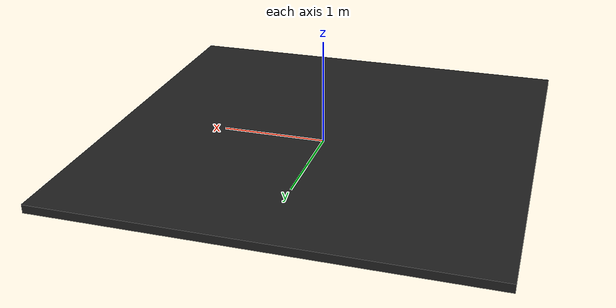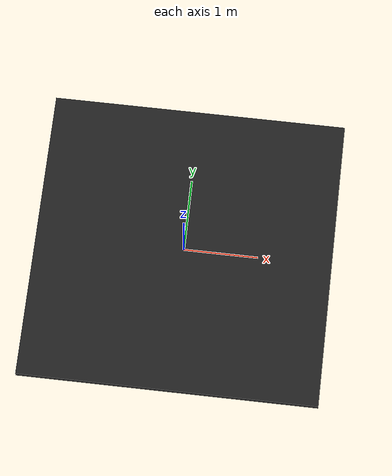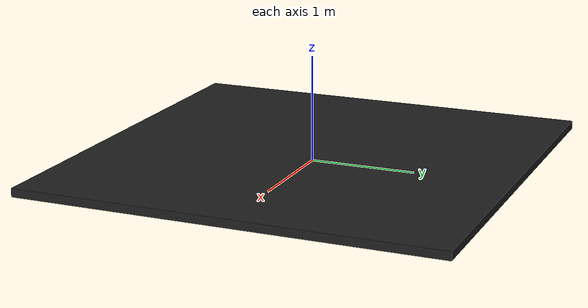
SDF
<?xml version="1.0"?>
<sdf version="1.9"><model name="platform"><static>true</static><link name="platform_link"><pose>0 0 0.04 0 0 0</pose><collision name="collision"><geometry><box><size>4 4 0.08</size></box></geometry></collision><visual name="visual"><geometry><box><size>4 4 0.08</size></box></geometry><material><ambient>0.12 0.12 0.12 1</ambient><diffuse>0.12 0.12 0.12 1</diffuse></material></visual></link></model></sdf>
